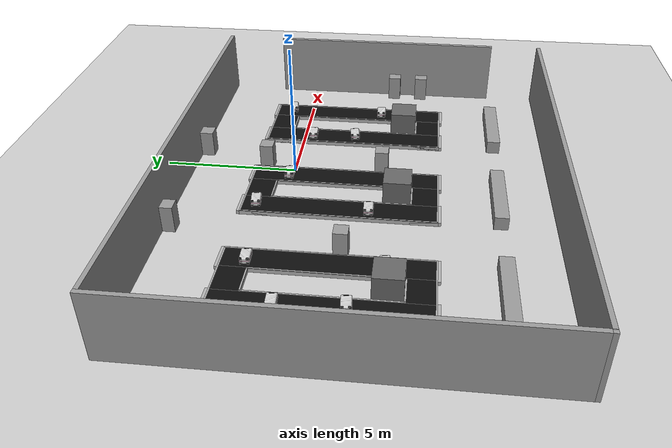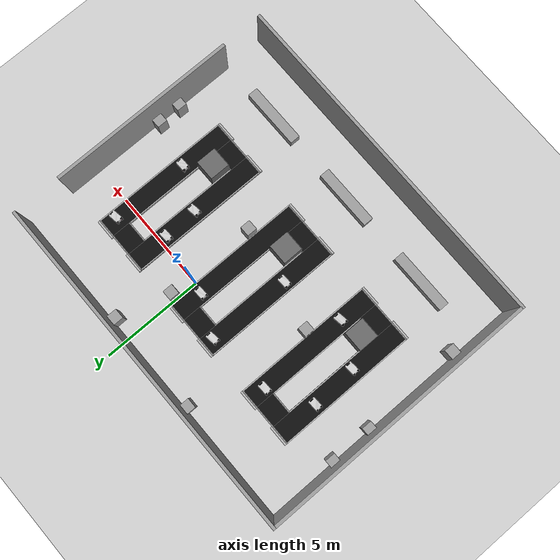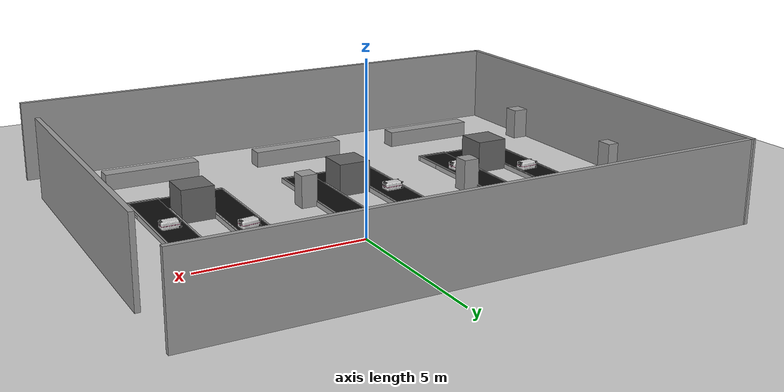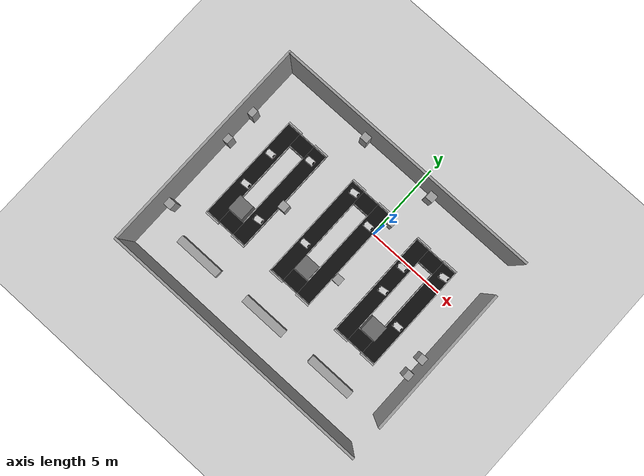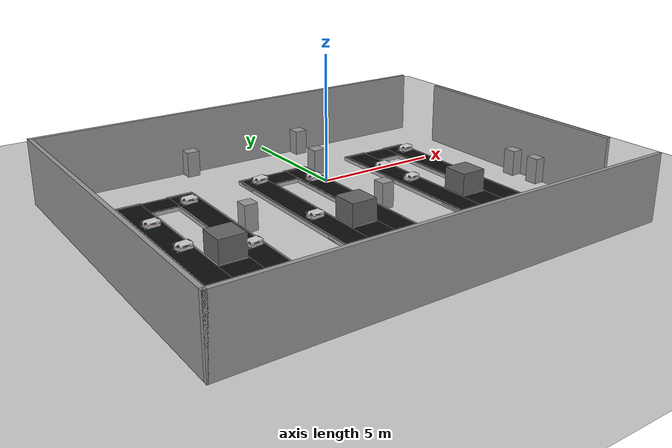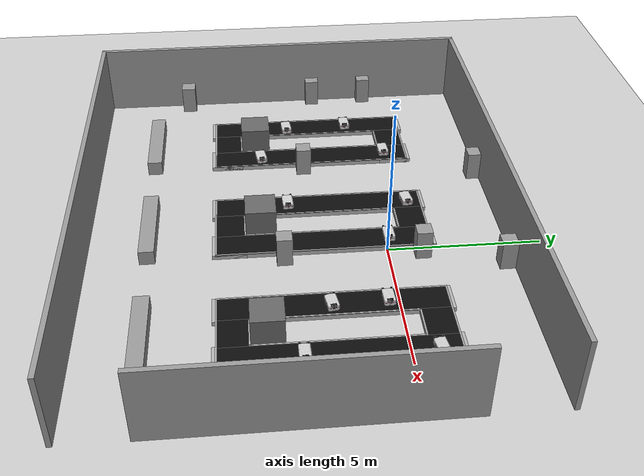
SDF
<sdf version="1.7">
 <world name="default">
  <light name="sun" type="directional">
   <pose>0 0 10 0 -0 0</pose>
   <diffuse>0.8 0.8 0.8 1</diffuse>
   <specular>0.2 0.2 0.2 1</specular>
   <attenuation>
    <range>1000</range>
    <constant>0.9</constant>
    <linear>0.01</linear>
    <quadratic>0.001</quadratic>
   </attenuation>
   <direction>-0.5 0.1 -0.9</direction>
   <spot><inner_angle>0</inner_angle><outer_angle>0</outer_angle><falloff>0</falloff></spot>
  </light>
  <model name="ground_plane">
   <static>1</static>
   <link name="link">
    <collision name="collision">
     <geometry><plane><normal>0 0 1</normal><size>100 100</size></plane></geometry>
     <surface>
      <contact><collide_bitmask>65535</collide_bitmask></contact>
      <friction><ode><mu>100</mu><mu2>50</mu2></ode></friction>
     </surface>
    </collision>
    <visual name="visual">
     <cast_shadows>0</cast_shadows>
     <geometry><plane><normal>0 0 1</normal><size>100 100</size></plane></geometry>
     <material>
      <script><uri>file://media/materials/scripts/gazebo.material</uri><name>Gazebo/Grey</name></script>
     </material>
    </visual>
   </link>
  </model>
  <gravity>0 0 -9.8</gravity>
  <magnetic_field>6e-06 2.3e-05 -4.2e-05</magnetic_field>
  <atmosphere type="adiabatic"/>
  <physics type="ode">
   <max_step_size>0.001</max_step_size>
   <real_time_factor>1</real_time_factor>
   <real_time_update_rate>1000</real_time_update_rate>
  </physics>
  <scene><ambient>0.4 0.4 0.4 1</ambient><background>0.7 0.7 0.7 1</background><shadows>1</shadows></scene>
  <spherical_coordinates>
   <surface_model>EARTH_WGS84</surface_model>
   <latitude_deg>0</latitude_deg>
   <longitude_deg>0</longitude_deg>
   <elevation>0</elevation>
   <heading_deg>0</heading_deg>
  </spherical_coordinates>
  <model name="airport_conveyor">
   <static>1</static>
   <link name="link">
    <visual name="pillar">
     <pose>2 0 0.5 0 -0 0</pose>
     <geometry><box><size>1 1 1</size></box></geometry>
     <material><ambient>0.3 0.3 0.3 1</ambient><diffuse>0.4 0.4 0.4 1</diffuse></material>
    </visual>
    <collision name="pillar_col">
     <pose>2 0 0.5 0 -0 0</pose>
     <geometry><box><size>1 1 1</size></box></geometry>
    </collision>
    <visual name="v_east_base">
     <pose>0 1 0.075 0 -0 0</pose>
     <geometry><box><size>7.2 1 0.15</size></box></geometry>
     <material><ambient>0.6 0.6 0.6 1</ambient><diffuse>0.7 0.7 0.7 1</diffuse></material>
    </visual>
    <visual name="v_west_base">
     <pose>0 -1 0.075 0 -0 0</pose>
     <geometry><box><size>7.2 1 0.15</size></box></geometry>
     <material><ambient>0.6 0.6 0.6 1</ambient><diffuse>0.7 0.7 0.7 1</diffuse></material>
    </visual>
    <visual name="v_north_base">
     <pose>3 0 0.075 0 -0 0</pose>
     <geometry><box><size>1 3 0.15</size></box></geometry>
     <material><ambient>0.6 0.6 0.6 1</ambient><diffuse>0.7 0.7 0.7 1</diffuse></material>
    </visual>
    <visual name="v_south_base">
     <pose>-3 0 0.075 0 -0 0</pose>
     <geometry><box><size>1 3 0.15</size></box></geometry>
     <material><ambient>0.6 0.6 0.6 1</ambient><diffuse>0.7 0.7 0.7 1</diffuse></material>
    </visual>
    <visual name="belt_e">
     <pose>0 1 0.151 0 -0 0</pose>
     <geometry><box><size>7 0.9 0.01</size></box></geometry>
     <material><ambient>0.05 0.05 0.05 1</ambient><diffuse>0.05 0.05 0.05 1</diffuse></material>
    </visual>
    <visual name="belt_w">
     <pose>0 -1 0.151 0 -0 0</pose>
     <geometry><box><size>7 0.9 0.01</size></box></geometry>
     <material><ambient>0.05 0.05 0.05 1</ambient><diffuse>0.05 0.05 0.05 1</diffuse></material>
    </visual>
    <visual name="belt_n">
     <pose>3 0 0.151 0 -0 0</pose>
     <geometry><box><size>0.9 1.1 0.01</size></box></geometry>
     <material><ambient>0.05 0.05 0.05 1</ambient><diffuse>0.05 0.05 0.05 1</diffuse></material>
    </visual>
    <visual name="belt_s">
     <pose>-3 0 0.151 0 -0 0</pose>
     <geometry><box><size>0.9 1.1 0.01</size></box></geometry>
     <material><ambient>0.05 0.05 0.05 1</ambient><diffuse>0.05 0.05 0.05 1</diffuse></material>
    </visual>
    <visual name="b_out_n">
     <pose>3.475 0 0.155 0 -0 0</pose>
     <geometry><box><size>0.05 3 0.02</size></box></geometry>
     <material><ambient>0.7 0.7 0.7 1</ambient></material>
    </visual>
    <visual name="b_out_s">
     <pose>-3.475 0 0.155 0 -0 0</pose>
     <geometry><box><size>0.05 3 0.02</size></box></geometry>
     <material><ambient>0.7 0.7 0.7 1</ambient></material>
    </visual>
    <visual name="b_out_e">
     <pose>0 1.475 0.155 0 -0 0</pose>
     <geometry><box><size>7 0.05 0.02</size></box></geometry>
     <material><ambient>0.7 0.7 0.7 1</ambient></material>
    </visual>
    <visual name="b_out_w">
     <pose>0 -1.475 0.155 0 -0 0</pose>
     <geometry><box><size>7 0.05 0.02</size></box></geometry>
     <material><ambient>0.7 0.7 0.7 1</ambient></material>
    </visual>
    <visual name="b_in_n">
     <pose>2.525 0 0.155 0 -0 0</pose>
     <geometry><box><size>0.05 1 0.02</size></box></geometry>
     <material><ambient>0.7 0.7 0.7 1</ambient></material>
    </visual>
    <visual name="b_in_s">
     <pose>-2.525 0 0.155 0 -0 0</pose>
     <geometry><box><size>0.05 1 0.02</size></box></geometry>
     <material><ambient>0.7 0.7 0.7 1</ambient></material>
    </visual>
    <visual name="b_in_e">
     <pose>0 0.525 0.155 0 -0 0</pose>
     <geometry><box><size>5 0.05 0.02</size></box></geometry>
     <material><ambient>0.7 0.7 0.7 1</ambient></material>
    </visual>
    <visual name="b_in_w">
     <pose>0 -0.525 0.155 0 -0 0</pose>
     <geometry><box><size>5 0.05 0.02</size></box></geometry>
     <material><ambient>0.7 0.7 0.7 1</ambient></material>
    </visual>
    <collision name="c_e">
     <pose>0 1 0.075 0 -0 0</pose>
     <geometry><box><size>7 1 0.15</size></box></geometry>
    </collision>
    <collision name="c_w">
     <pose>0 -1 0.075 0 -0 0</pose>
     <geometry><box><size>7 1 0.15</size></box></geometry>
    </collision>
    <collision name="c_n">
     <pose>3 0 0.075 0 -0 0</pose>
     <geometry><box><size>1 1 0.15</size></box></geometry>
    </collision>
    <collision name="c_s">
     <pose>-3 0 0.075 0 -0 0</pose>
     <geometry><box><size>1 1 0.15</size></box></geometry>
    </collision>
   </link>
   <pose>-6.5 -2 0 0 0 -1.57238</pose>
  </model>
  <model name="airport_conveyor_clone">
   <static>1</static>
   <link name="link">
    <visual name="pillar">
     <pose>2 0 0.5 0 -0 0</pose>
     <geometry><box><size>1 1 1</size></box></geometry>
     <material><ambient>0.3 0.3 0.3 1</ambient><diffuse>0.4 0.4 0.4 1</diffuse></material>
    </visual>
    <collision name="pillar_col">
     <pose>2 0 0.5 0 -0 0</pose>
     <geometry><box><size>1 1 1</size></box></geometry>
    </collision>
    <visual name="v_east_base">
     <pose>0 1 0.075 0 -0 0</pose>
     <geometry><box><size>7.2 1 0.15</size></box></geometry>
     <material><ambient>0.6 0.6 0.6 1</ambient><diffuse>0.7 0.7 0.7 1</diffuse></material>
    </visual>
    <visual name="v_west_base">
     <pose>0 -1 0.075 0 -0 0</pose>
     <geometry><box><size>7.2 1 0.15</size></box></geometry>
     <material><ambient>0.6 0.6 0.6 1</ambient><diffuse>0.7 0.7 0.7 1</diffuse></material>
    </visual>
    <visual name="v_north_base">
     <pose>3 0 0.075 0 -0 0</pose>
     <geometry><box><size>1 3 0.15</size></box></geometry>
     <material><ambient>0.6 0.6 0.6 1</ambient><diffuse>0.7 0.7 0.7 1</diffuse></material>
    </visual>
    <visual name="v_south_base">
     <pose>-3 0 0.075 0 -0 0</pose>
     <geometry><box><size>1 3 0.15</size></box></geometry>
     <material><ambient>0.6 0.6 0.6 1</ambient><diffuse>0.7 0.7 0.7 1</diffuse></material>
    </visual>
    <visual name="belt_e">
     <pose>0 1 0.151 0 -0 0</pose>
     <geometry><box><size>7 0.9 0.01</size></box></geometry>
     <material><ambient>0.05 0.05 0.05 1</ambient><diffuse>0.05 0.05 0.05 1</diffuse></material>
    </visual>
    <visual name="belt_w">
     <pose>0 -1 0.151 0 -0 0</pose>
     <geometry><box><size>7 0.9 0.01</size></box></geometry>
     <material><ambient>0.05 0.05 0.05 1</ambient><diffuse>0.05 0.05 0.05 1</diffuse></material>
    </visual>
    <visual name="belt_n">
     <pose>3 0 0.151 0 -0 0</pose>
     <geometry><box><size>0.9 1.1 0.01</size></box></geometry>
     <material><ambient>0.05 0.05 0.05 1</ambient><diffuse>0.05 0.05 0.05 1</diffuse></material>
    </visual>
    <visual name="belt_s">
     <pose>-3 0 0.151 0 -0 0</pose>
     <geometry><box><size>0.9 1.1 0.01</size></box></geometry>
     <material><ambient>0.05 0.05 0.05 1</ambient><diffuse>0.05 0.05 0.05 1</diffuse></material>
    </visual>
    <visual name="b_out_n">
     <pose>3.475 0 0.155 0 -0 0</pose>
     <geometry><box><size>0.05 3 0.02</size></box></geometry>
     <material><ambient>0.7 0.7 0.7 1</ambient></material>
    </visual>
    <visual name="b_out_s">
     <pose>-3.475 0 0.155 0 -0 0</pose>
     <geometry><box><size>0.05 3 0.02</size></box></geometry>
     <material><ambient>0.7 0.7 0.7 1</ambient></material>
    </visual>
    <visual name="b_out_e">
     <pose>0 1.475 0.155 0 -0 0</pose>
     <geometry><box><size>7 0.05 0.02</size></box></geometry>
     <material><ambient>0.7 0.7 0.7 1</ambient></material>
    </visual>
    <visual name="b_out_w">
     <pose>0 -1.475 0.155 0 -0 0</pose>
     <geometry><box><size>7 0.05 0.02</size></box></geometry>
     <material><ambient>0.7 0.7 0.7 1</ambient></material>
    </visual>
    <visual name="b_in_n">
     <pose>2.525 0 0.155 0 -0 0</pose>
     <geometry><box><size>0.05 1 0.02</size></box></geometry>
     <material><ambient>0.7 0.7 0.7 1</ambient></material>
    </visual>
    <visual name="b_in_s">
     <pose>-2.525 0 0.155 0 -0 0</pose>
     <geometry><box><size>0.05 1 0.02</size></box></geometry>
     <material><ambient>0.7 0.7 0.7 1</ambient></material>
    </visual>
    <visual name="b_in_e">
     <pose>0 0.525 0.155 0 -0 0</pose>
     <geometry><box><size>5 0.05 0.02</size></box></geometry>
     <material><ambient>0.7 0.7 0.7 1</ambient></material>
    </visual>
    <visual name="b_in_w">
     <pose>0 -0.525 0.155 0 -0 0</pose>
     <geometry><box><size>5 0.05 0.02</size></box></geometry>
     <material><ambient>0.7 0.7 0.7 1</ambient></material>
    </visual>
    <collision name="c_e">
     <pose>0 1 0.075 0 -0 0</pose>
     <geometry><box><size>7 1 0.15</size></box></geometry>
    </collision>
    <collision name="c_w">
     <pose>0 -1 0.075 0 -0 0</pose>
     <geometry><box><size>7 1 0.15</size></box></geometry>
    </collision>
    <collision name="c_n">
     <pose>3 0 0.075 0 -0 0</pose>
     <geometry><box><size>1 1 0.15</size></box></geometry>
    </collision>
    <collision name="c_s">
     <pose>-3 0 0.075 0 -0 0</pose>
     <geometry><box><size>1 1 0.15</size></box></geometry>
    </collision>
   </link>
   <pose>-1.5 -2 0 0 0 -1.57238</pose>
  </model>
  <model name="airport_conveyor_clone_clone">
   <static>1</static>
   <link name="link">
    <visual name="pillar">
     <pose>2 0 0.5 0 -0 0</pose>
     <geometry><box><size>1 1 1</size></box></geometry>
     <material><ambient>0.3 0.3 0.3 1</ambient><diffuse>0.4 0.4 0.4 1</diffuse></material>
    </visual>
    <collision name="pillar_col">
     <pose>2 0 0.5 0 -0 0</pose>
     <geometry><box><size>1 1 1</size></box></geometry>
    </collision>
    <visual name="v_east_base">
     <pose>0 1 0.075 0 -0 0</pose>
     <geometry><box><size>7.2 1 0.15</size></box></geometry>
     <material><ambient>0.6 0.6 0.6 1</ambient><diffuse>0.7 0.7 0.7 1</diffuse></material>
    </visual>
    <visual name="v_west_base">
     <pose>0 -1 0.075 0 -0 0</pose>
     <geometry><box><size>7.2 1 0.15</size></box></geometry>
     <material><ambient>0.6 0.6 0.6 1</ambient><diffuse>0.7 0.7 0.7 1</diffuse></material>
    </visual>
    <visual name="v_north_base">
     <pose>3 0 0.075 0 -0 0</pose>
     <geometry><box><size>1 3 0.15</size></box></geometry>
     <material><ambient>0.6 0.6 0.6 1</ambient><diffuse>0.7 0.7 0.7 1</diffuse></material>
    </visual>
    <visual name="v_south_base">
     <pose>-3 0 0.075 0 -0 0</pose>
     <geometry><box><size>1 3 0.15</size></box></geometry>
     <material><ambient>0.6 0.6 0.6 1</ambient><diffuse>0.7 0.7 0.7 1</diffuse></material>
    </visual>
    <visual name="belt_e">
     <pose>0 1 0.151 0 -0 0</pose>
     <geometry><box><size>7 0.9 0.01</size></box></geometry>
     <material><ambient>0.05 0.05 0.05 1</ambient><diffuse>0.05 0.05 0.05 1</diffuse></material>
    </visual>
    <visual name="belt_w">
     <pose>0 -1 0.151 0 -0 0</pose>
     <geometry><box><size>7 0.9 0.01</size></box></geometry>
     <material><ambient>0.05 0.05 0.05 1</ambient><diffuse>0.05 0.05 0.05 1</diffuse></material>
    </visual>
    <visual name="belt_n">
     <pose>3 0 0.151 0 -0 0</pose>
     <geometry><box><size>0.9 1.1 0.01</size></box></geometry>
     <material><ambient>0.05 0.05 0.05 1</ambient><diffuse>0.05 0.05 0.05 1</diffuse></material>
    </visual>
    <visual name="belt_s">
     <pose>-3 0 0.151 0 -0 0</pose>
     <geometry><box><size>0.9 1.1 0.01</size></box></geometry>
     <material><ambient>0.05 0.05 0.05 1</ambient><diffuse>0.05 0.05 0.05 1</diffuse></material>
    </visual>
    <visual name="b_out_n">
     <pose>3.475 0 0.155 0 -0 0</pose>
     <geometry><box><size>0.05 3 0.02</size></box></geometry>
     <material><ambient>0.7 0.7 0.7 1</ambient></material>
    </visual>
    <visual name="b_out_s">
     <pose>-3.475 0 0.155 0 -0 0</pose>
     <geometry><box><size>0.05 3 0.02</size></box></geometry>
     <material><ambient>0.7 0.7 0.7 1</ambient></material>
    </visual>
    <visual name="b_out_e">
     <pose>0 1.475 0.155 0 -0 0</pose>
     <geometry><box><size>7 0.05 0.02</size></box></geometry>
     <material><ambient>0.7 0.7 0.7 1</ambient></material>
    </visual>
    <visual name="b_out_w">
     <pose>0 -1.475 0.155 0 -0 0</pose>
     <geometry><box><size>7 0.05 0.02</size></box></geometry>
     <material><ambient>0.7 0.7 0.7 1</ambient></material>
    </visual>
    <visual name="b_in_n">
     <pose>2.525 0 0.155 0 -0 0</pose>
     <geometry><box><size>0.05 1 0.02</size></box></geometry>
     <material><ambient>0.7 0.7 0.7 1</ambient></material>
    </visual>
    <visual name="b_in_s">
     <pose>-2.525 0 0.155 0 -0 0</pose>
     <geometry><box><size>0.05 1 0.02</size></box></geometry>
     <material><ambient>0.7 0.7 0.7 1</ambient></material>
    </visual>
    <visual name="b_in_e">
     <pose>0 0.525 0.155 0 -0 0</pose>
     <geometry><box><size>5 0.05 0.02</size></box></geometry>
     <material><ambient>0.7 0.7 0.7 1</ambient></material>
    </visual>
    <visual name="b_in_w">
     <pose>0 -0.525 0.155 0 -0 0</pose>
     <geometry><box><size>5 0.05 0.02</size></box></geometry>
     <material><ambient>0.7 0.7 0.7 1</ambient></material>
    </visual>
    <collision name="c_e">
     <pose>0 1 0.075 0 -0 0</pose>
     <geometry><box><size>7 1 0.15</size></box></geometry>
    </collision>
    <collision name="c_w">
     <pose>0 -1 0.075 0 -0 0</pose>
     <geometry><box><size>7 1 0.15</size></box></geometry>
    </collision>
    <collision name="c_n">
     <pose>3 0 0.075 0 -0 0</pose>
     <geometry><box><size>1 1 0.15</size></box></geometry>
    </collision>
    <collision name="c_s">
     <pose>-3 0 0.075 0 -0 0</pose>
     <geometry><box><size>1 1 0.15</size></box></geometry>
    </collision>
   </link>
   <pose>3.5 -2 0 0 0 -1.57238</pose>
  </model>
  <model name="luggage">
   <static>0</static>
   <link name="link">
    <inertial>
     <mass>3</mass>
     <inertia><ixx>0.05</ixx><ixy>0</ixy><ixz>0</ixz><iyy>0.05</iyy><iyz>0</iyz><izz>0.05</izz></inertia>
    </inertial>
    <visual name="visual">
     <geometry><mesh><uri>model://luggage/meshes/HandLuggage.dae</uri><scale>1 1 1</scale></mesh></geometry>
    </visual>
    <collision name="collision">
     <geometry><mesh><uri>model://luggage/meshes/HandLuggage.dae</uri><scale>1 1 1</scale></mesh></geometry>
    </collision>
   </link>
   <pose>-5.52989 0.660749 0.265891 0.00025 -0.005843 0.043374</pose>
  </model>
  <model name="luggage_clone">
   <static>0</static>
   <link name="link">
    <inertial>
     <mass>3</mass>
     <inertia><ixx>0.05</ixx><ixy>0</ixy><ixz>0</ixz><iyy>0.05</iyy><iyz>0</iyz><izz>0.05</izz></inertia>
    </inertial>
    <visual name="visual">
     <geometry><mesh><uri>model://luggage/meshes/HandLuggage.dae</uri><scale>1 1 1</scale></mesh></geometry>
    </visual>
    <collision name="collision">
     <geometry><mesh><uri>model://luggage/meshes/HandLuggage.dae</uri><scale>1 1 1</scale></mesh></geometry>
    </collision>
   </link>
   <pose>-7.36874 -2.79955 0.265896 0.000282 -0.00589 0.080987</pose>
  </model>
  <model name="luggage_clone_0">
   <static>0</static>
   <link name="link">
    <inertial>
     <mass>3</mass>
     <inertia><ixx>0.05</ixx><ixy>0</ixy><ixz>0</ixz><iyy>0.05</iyy><iyz>0</iyz><izz>0.05</izz></inertia>
    </inertial>
    <visual name="visual">
     <geometry><mesh><uri>model://luggage/meshes/HandLuggage.dae</uri><scale>1 1 1</scale></mesh></geometry>
    </visual>
    <collision name="collision">
     <geometry><mesh><uri>model://luggage/meshes/HandLuggage.dae</uri><scale>1 1 1</scale></mesh></geometry>
    </collision>
   </link>
   <pose>-7.49456 -0.560693 0.2659 0.000262 -0.005877 0.043264</pose>
  </model>
  <model name="luggage_clone_1">
   <static>0</static>
   <link name="link">
    <inertial>
     <mass>3</mass>
     <inertia><ixx>0.05</ixx><ixy>0</ixy><ixz>0</ixz><iyy>0.05</iyy><iyz>0</iyz><izz>0.05</izz></inertia>
    </inertial>
    <visual name="visual">
     <geometry><mesh><uri>model://luggage/meshes/HandLuggage.dae</uri><scale>1 1 1</scale></mesh></geometry>
    </visual>
    <collision name="collision">
     <geometry><mesh><uri>model://luggage/meshes/HandLuggage.dae</uri><scale>1 1 1</scale></mesh></geometry>
    </collision>
   </link>
   <pose>-5.42116 -3.83323 0.265899 2.8e-05 -0.006004 0.14769</pose>
  </model>
  <model name="luggage_clone_2">
   <static>0</static>
   <link name="link">
    <inertial>
     <mass>3</mass>
     <inertia><ixx>0.05</ixx><ixy>0</ixy><ixz>0</ixz><iyy>0.05</iyy><iyz>0</iyz><izz>0.05</izz></inertia>
    </inertial>
    <visual name="visual">
     <geometry><mesh><uri>model://luggage/meshes/HandLuggage.dae</uri><scale>1 1 1</scale></mesh></geometry>
    </visual>
    <collision name="collision">
     <geometry><mesh><uri>model://luggage/meshes/HandLuggage.dae</uri><scale>1 1 1</scale></mesh></geometry>
    </collision>
   </link>
   <pose>-2.539 -3.04402 0.265891 0.000255 -0.00584 0.043659</pose>
  </model>
  <model name="luggage_clone_3">
   <static>0</static>
   <link name="link">
    <inertial>
     <mass>3</mass>
     <inertia><ixx>0.05</ixx><ixy>0</ixy><ixz>0</ixz><iyy>0.05</iyy><iyz>0</iyz><izz>0.05</izz></inertia>
    </inertial>
    <visual name="visual">
     <geometry><mesh><uri>model://luggage/meshes/HandLuggage.dae</uri><scale>1 1 1</scale></mesh></geometry>
    </visual>
    <collision name="collision">
     <geometry><mesh><uri>model://luggage/meshes/HandLuggage.dae</uri><scale>1 1 1</scale></mesh></geometry>
    </collision>
   </link>
   <pose>-0.516883 0.113213 0.265896 0.000278 -0.005892 0.020847</pose>
  </model>
  <model name="luggage_clone_4">
   <static>0</static>
   <link name="link">
    <inertial>
     <mass>3</mass>
     <inertia><ixx>0.05</ixx><ixy>0</ixy><ixz>0</ixz><iyy>0.05</iyy><iyz>0</iyz><izz>0.05</izz></inertia>
    </inertial>
    <visual name="visual">
     <geometry><mesh><uri>model://luggage/meshes/HandLuggage.dae</uri><scale>1 1 1</scale></mesh></geometry>
    </visual>
    <collision name="collision">
     <geometry><mesh><uri>model://luggage/meshes/HandLuggage.dae</uri><scale>1 1 1</scale></mesh></geometry>
    </collision>
   </link>
   <pose>-2.39807 0.998521 0.265896 0.000276 -0.005894 0.13053</pose>
  </model>
  <model name="luggage_clone_5">
   <static>0</static>
   <link name="link">
    <inertial>
     <mass>3</mass>
     <inertia><ixx>0.05</ixx><ixy>0</ixy><ixz>0</ixz><iyy>0.05</iyy><iyz>0</iyz><izz>0.05</izz></inertia>
    </inertial>
    <visual name="visual">
     <geometry><mesh><uri>model://luggage/meshes/HandLuggage.dae</uri><scale>1 1 1</scale></mesh></geometry>
    </visual>
    <collision name="collision">
     <geometry><mesh><uri>model://luggage/meshes/HandLuggage.dae</uri><scale>1 1 1</scale></mesh></geometry>
    </collision>
   </link>
   <pose>2.48459 -0.350458 0.2659 0.000273 -0.005871 0.042393</pose>
  </model>
  <model name="luggage_clone_6">
   <static>0</static>
   <link name="link">
    <inertial>
     <mass>3</mass>
     <inertia><ixx>0.05</ixx><ixy>0</ixy><ixz>0</ixz><iyy>0.05</iyy><iyz>0</iyz><izz>0.05</izz></inertia>
    </inertial>
    <visual name="visual">
     <geometry><mesh><uri>model://luggage/meshes/HandLuggage.dae</uri><scale>1 1 1</scale></mesh></geometry>
    </visual>
    <collision name="collision">
     <geometry><mesh><uri>model://luggage/meshes/HandLuggage.dae</uri><scale>1 1 1</scale></mesh></geometry>
    </collision>
   </link>
   <pose>4.62343 0.826227 0.265896 0.000275 -0.005894 0.147756</pose>
  </model>
  <model name="luggage_clone_7">
   <static>0</static>
   <link name="link">
    <inertial>
     <mass>3</mass>
     <inertia><ixx>0.05</ixx><ixy>0</ixy><ixz>0</ixz><iyy>0.05</iyy><iyz>0</iyz><izz>0.05</izz></inertia>
    </inertial>
    <visual name="visual">
     <geometry><mesh><uri>model://luggage/meshes/HandLuggage.dae</uri><scale>1 1 1</scale></mesh></geometry>
    </visual>
    <collision name="collision">
     <geometry><mesh><uri>model://luggage/meshes/HandLuggage.dae</uri><scale>1 1 1</scale></mesh></geometry>
    </collision>
   </link>
   <pose>4.53528 -3.00962 0.2659 0.000269 -0.005874 0.021999</pose>
  </model>
  <model name="luggage_clone_8">
   <static>0</static>
   <link name="link">
    <inertial>
     <mass>3</mass>
     <inertia><ixx>0.05</ixx><ixy>0</ixy><ixz>0</ixz><iyy>0.05</iyy><iyz>0</iyz><izz>0.05</izz></inertia>
    </inertial>
    <visual name="visual">
     <geometry><mesh><uri>model://luggage/meshes/HandLuggage.dae</uri><scale>1 1 1</scale></mesh></geometry>
    </visual>
    <collision name="collision">
     <geometry><mesh><uri>model://luggage/meshes/HandLuggage.dae</uri><scale>1 1 1</scale></mesh></geometry>
    </collision>
   </link>
   <pose>2.56703 -2.05541 0.2659 0.000272 -0.005872 0.148358</pose>
  </model>
  <model name="airport_seat">
   <pose>-3.98092 -4.5 0 0 -0 0</pose>
   <link name="Wall_15">
    <collision name="Wall_15_Collision">
     <geometry><box><size>3 0.5 0.5</size></box></geometry>
     <pose>0 0 0.25 0 -0 0</pose>
    </collision>
    <visual name="Wall_15_Visual">
     <pose>0 0 0.25 0 -0 0</pose>
     <geometry><box><size>3 0.5 0.5</size></box></geometry>
     <material>
      <script><uri>file://media/materials/scripts/gazebo.material</uri><name>Gazebo/Grey</name></script>
      <ambient>1 1 1 1</ambient>
     </material>
     <meta><layer>0</layer></meta>
    </visual>
    <pose>-2.5 -3.144 0 0 -0 0</pose>
   </link>
   <static>1</static>
  </model>
  <model name="airport_seat_clone_1">
   <pose>1.03695 -4.5 0 0 -0 0</pose>
   <link name="Wall_15">
    <collision name="Wall_15_Collision">
     <geometry><box><size>3 0.5 0.5</size></box></geometry>
     <pose>0 0 0.25 0 -0 0</pose>
    </collision>
    <visual name="Wall_15_Visual">
     <pose>0 0 0.25 0 -0 0</pose>
     <geometry><box><size>3 0.5 0.5</size></box></geometry>
     <material>
      <script><uri>file://media/materials/scripts/gazebo.material</uri><name>Gazebo/Grey</name></script>
      <ambient>1 1 1 1</ambient>
     </material>
     <meta><layer>0</layer></meta>
    </visual>
    <pose>-2.5 -3.144 0 0 -0 0</pose>
   </link>
   <static>1</static>
  </model>
  <model name="airport_seat_clone_1_clone">
   <pose>6.06109 -4.5 0 0 -0 0</pose>
   <link name="Wall_15">
    <collision name="Wall_15_Collision">
     <geometry><box><size>3 0.5 0.5</size></box></geometry>
     <pose>0 0 0.25 0 -0 0</pose>
    </collision>
    <visual name="Wall_15_Visual">
     <pose>0 0 0.25 0 -0 0</pose>
     <geometry><box><size>3 0.5 0.5</size></box></geometry>
     <material>
      <script><uri>file://media/materials/scripts/gazebo.material</uri><name>Gazebo/Grey</name></script>
      <ambient>1 1 1 1</ambient>
     </material>
     <meta><layer>0</layer></meta>
    </visual>
    <pose>-2.5 -3.144 0 0 -0 0</pose>
   </link>
   <static>1</static>
  </model>
  <model name="airport_bin">
   <pose>-4.95853 -0.357674 0 0 -0 0</pose>
   <link name="Wall_17">
    <collision name="Wall_17_Collision">
     <geometry><box><size>0.5 0.5 1</size></box></geometry>
     <pose>0 0 0.5 0 -0 0</pose>
    </collision>
    <visual name="Wall_17_Visual">
     <pose>0 0 0.5 0 -0 0</pose>
     <geometry><box><size>0.5 0.5 1</size></box></geometry>
     <material>
      <script><uri>file://media/materials/scripts/gazebo.material</uri><name>Gazebo/Grey</name></script>
      <ambient>1 1 1 1</ambient>
     </material>
     <meta><layer>0</layer></meta>
    </visual>
    <pose>-4.79886 0.787753 0 0 -0 0</pose>
   </link>
   <static>1</static>
  </model>
  <model name="airport_bin_clone">
   <pose>-4.96387 -2.41622 0 0 -0 0</pose>
   <link name="Wall_17">
    <collision name="Wall_17_Collision">
     <geometry><box><size>0.5 0.5 1</size></box></geometry>
     <pose>0 0 0.5 0 -0 0</pose>
    </collision>
    <visual name="Wall_17_Visual">
     <pose>0 0 0.5 0 -0 0</pose>
     <geometry><box><size>0.5 0.5 1</size></box></geometry>
     <material>
      <script><uri>file://media/materials/scripts/gazebo.material</uri><name>Gazebo/Grey</name></script>
      <ambient>1 1 1 1</ambient>
     </material>
     <meta><layer>0</layer></meta>
    </visual>
    <pose>-4.79886 0.787753 0 0 -0 0</pose>
   </link>
   <static>1</static>
  </model>
  <model name="airport_bin_clone_0">
   <pose>0.01892 -3.1279 0 0 -0 0</pose>
   <link name="Wall_17">
    <collision name="Wall_17_Collision">
     <geometry><box><size>0.5 0.5 1</size></box></geometry>
     <pose>0 0 0.5 0 -0 0</pose>
    </collision>
    <visual name="Wall_17_Visual">
     <pose>0 0 0.5 0 -0 0</pose>
     <geometry><box><size>0.5 0.5 1</size></box></geometry>
     <material>
      <script><uri>file://media/materials/scripts/gazebo.material</uri><name>Gazebo/Grey</name></script>
      <ambient>1 1 1 1</ambient>
     </material>
     <meta><layer>0</layer></meta>
    </visual>
    <pose>-4.79886 0.787753 0 0 -0 0</pose>
   </link>
   <static>1</static>
  </model>
  <model name="airport_bin_clone_1">
   <pose>5.05424 0.302617 0 0 -0 0</pose>
   <link name="Wall_17">
    <collision name="Wall_17_Collision">
     <geometry><box><size>0.5 0.5 1</size></box></geometry>
     <pose>0 0 0.5 0 -0 0</pose>
    </collision>
    <visual name="Wall_17_Visual">
     <pose>0 0 0.5 0 -0 0</pose>
     <geometry><box><size>0.5 0.5 1</size></box></geometry>
     <material>
      <script><uri>file://media/materials/scripts/gazebo.material</uri><name>Gazebo/Grey</name></script>
      <ambient>1 1 1 1</ambient>
     </material>
     <meta><layer>0</layer></meta>
    </visual>
    <pose>-4.79886 0.787753 0 0 -0 0</pose>
   </link>
   <static>1</static>
  </model>
  <model name="airport_bin_clone_2">
   <pose>5.02553 -4.10714 0 0 -0 0</pose>
   <link name="Wall_17">
    <collision name="Wall_17_Collision">
     <geometry><box><size>0.5 0.5 1</size></box></geometry>
     <pose>0 0 0.5 0 -0 0</pose>
    </collision>
    <visual name="Wall_17_Visual">
     <pose>0 0 0.5 0 -0 0</pose>
     <geometry><box><size>0.5 0.5 1</size></box></geometry>
     <material>
      <script><uri>file://media/materials/scripts/gazebo.material</uri><name>Gazebo/Grey</name></script>
      <ambient>1 1 1 1</ambient>
     </material>
     <meta><layer>0</layer></meta>
    </visual>
    <pose>-4.79886 0.787753 0 0 -0 0</pose>
   </link>
   <static>1</static>
  </model>
  <model name="airport_bin_clone_3">
   <pose>11.43 -4.25132 0 0 -0 0</pose>
   <link name="Wall_17">
    <collision name="Wall_17_Collision">
     <geometry><box><size>0.5 0.5 1</size></box></geometry>
     <pose>0 0 0.5 0 -0 0</pose>
    </collision>
    <visual name="Wall_17_Visual">
     <pose>0 0 0.5 0 -0 0</pose>
     <geometry><box><size>0.5 0.5 1</size></box></geometry>
     <material>
      <script><uri>file://media/materials/scripts/gazebo.material</uri><name>Gazebo/Grey</name></script>
      <ambient>1 1 1 1</ambient>
     </material>
     <meta><layer>0</layer></meta>
    </visual>
    <pose>-4.79886 0.787753 0 0 -0 0</pose>
   </link>
   <static>1</static>
  </model>
  <model name="airport_bin_clone_4">
   <pose>11.4614 -5.41322 0 0 -0 0</pose>
   <link name="Wall_17">
    <collision name="Wall_17_Collision">
     <geometry><box><size>0.5 0.5 1</size></box></geometry>
     <pose>0 0 0.5 0 -0 0</pose>
    </collision>
    <visual name="Wall_17_Visual">
     <pose>0 0 0.5 0 -0 0</pose>
     <geometry><box><size>0.5 0.5 1</size></box></geometry>
     <material>
      <script><uri>file://media/materials/scripts/gazebo.material</uri><name>Gazebo/Grey</name></script>
      <ambient>1 1 1 1</ambient>
     </material>
     <meta><layer>0</layer></meta>
    </visual>
    <pose>-4.79886 0.787753 0 0 -0 0</pose>
   </link>
   <static>1</static>
  </model>
  <model name="Untitled">
   <pose>-1.53175 -2.84963 0 0 -0 0</pose>
   <link name="Wall_0">
    <collision name="Wall_0_Collision">
     <geometry><box><size>17 0.15 2.5</size></box></geometry>
     <pose>0 0 1.25 0 -0 0</pose>
    </collision>
    <visual name="Wall_0_Visual">
     <pose>0 0 1.25 0 -0 0</pose>
     <geometry><box><size>17 0.15 2.5</size></box></geometry>
     <material>
      <script><uri>file://media/materials/scripts/gazebo.material</uri><name>Gazebo/Grey</name></script>
      <ambient>1 1 1 1</ambient>
     </material>
     <meta><layer>0</layer></meta>
    </visual>
    <pose>-0.000177 -6.8 0 0 -0 0</pose>
   </link>
   <link name="Wall_2">
    <collision name="Wall_2_Collision">
     <geometry><box><size>13.75 0.15 2.5</size></box></geometry>
     <pose>0 0 1.25 0 -0 0</pose>
    </collision>
    <visual name="Wall_2_Visual">
     <pose>0 0 1.25 0 -0 0</pose>
     <geometry><box><size>13.75 0.15 2.5</size></box></geometry>
     <material>
      <script><uri>file://media/materials/scripts/gazebo.material</uri><name>Gazebo/Grey</name></script>
      <ambient>1 1 1 1</ambient>
     </material>
     <meta><layer>0</layer></meta>
    </visual>
    <pose>-8.42518 0 0 0 -0 1.5708</pose>
   </link>
   <link name="Wall_3">
    <collision name="Wall_3_Collision">
     <geometry><box><size>17 0.15 2.5</size></box></geometry>
     <pose>0 0 1.25 0 -0 0</pose>
    </collision>
    <visual name="Wall_3_Visual">
     <pose>0 0 1.25 0 -0 0</pose>
     <geometry><box><size>17 0.15 2.5</size></box></geometry>
     <material>
      <script><uri>file://media/materials/scripts/gazebo.material</uri><name>Gazebo/Grey</name></script>
      <ambient>1 1 1 1</ambient>
     </material>
     <meta><layer>0</layer></meta>
    </visual>
    <pose>-0.000177 6.8 0 0 -0 0</pose>
   </link>
   <link name="Wall_5">
    <collision name="Wall_5_Collision">
     <geometry><box><size>9.25 0.15 2.5</size></box></geometry>
     <pose>0 0 1.25 0 -0 0</pose>
    </collision>
    <visual name="Wall_5_Visual">
     <pose>0 0 1.25 0 -0 0</pose>
     <geometry><box><size>9.25 0.15 2.5</size></box></geometry>
     <material>
      <script><uri>file://media/materials/scripts/gazebo.material</uri><name>Gazebo/Grey</name></script>
      <ambient>1 1 1 1</ambient>
     </material>
     <meta><layer>0</layer></meta>
    </visual>
    <pose>8.42518 -0.152674 0 0 -0 -1.5708</pose>
   </link>
   <static>1</static>
  </model>
  <model name="airport_bin_clone_clone">
   <pose>-4.80847 -7.30078 0 0 -0 0</pose>
   <link name="Wall_17">
    <collision name="Wall_17_Collision">
     <geometry><box><size>0.5 0.5 1</size></box></geometry>
     <pose>0 0 0.5 0 -0 0</pose>
    </collision>
    <visual name="Wall_17_Visual">
     <pose>0 0 0.5 0 -0 0</pose>
     <geometry><box><size>0.5 0.5 1</size></box></geometry>
     <material>
      <script><uri>file://media/materials/scripts/gazebo.material</uri><name>Gazebo/Grey</name></script>
      <ambient>1 1 1 1</ambient>
     </material>
     <meta><layer>0</layer></meta>
    </visual>
    <pose>-4.79886 0.787753 0 0 -0 0</pose>
   </link>
   <static>1</static>
  </model>
  <model name="airport_bin_clone_1_clone">
   <pose>0.812284 2.88695 0 0 -0 0</pose>
   <link name="Wall_17">
    <collision name="Wall_17_Collision">
     <geometry><box><size>0.5 0.5 1</size></box></geometry>
     <pose>0 0 0.5 0 -0 0</pose>
    </collision>
    <visual name="Wall_17_Visual">
     <pose>0 0 0.5 0 -0 0</pose>
     <geometry><box><size>0.5 0.5 1</size></box></geometry>
     <material>
      <script><uri>file://media/materials/scripts/gazebo.material</uri><name>Gazebo/Grey</name></script>
      <ambient>1 1 1 1</ambient>
     </material>
     <meta><layer>0</layer></meta>
    </visual>
    <pose>-4.79886 0.787753 0 0 -0 0</pose>
   </link>
   <static>1</static>
  </model>
  <model name="airport_bin_clone_1_clone_0">
   <pose>5.79341 2.83735 0 0 -0 0</pose>
   <link name="Wall_17">
    <collision name="Wall_17_Collision">
     <geometry><box><size>0.5 0.5 1</size></box></geometry>
     <pose>0 0 0.5 0 -0 0</pose>
    </collision>
    <visual name="Wall_17_Visual">
     <pose>0 0 0.5 0 -0 0</pose>
     <geometry><box><size>0.5 0.5 1</size></box></geometry>
     <material>
      <script><uri>file://media/materials/scripts/gazebo.material</uri><name>Gazebo/Grey</name></script>
      <ambient>1 1 1 1</ambient>
     </material>
     <meta><layer>0</layer></meta>
    </visual>
    <pose>-4.79886 0.787753 0 0 -0 0</pose>
   </link>
   <static>1</static>
  </model>
 </world>
</sdf>
